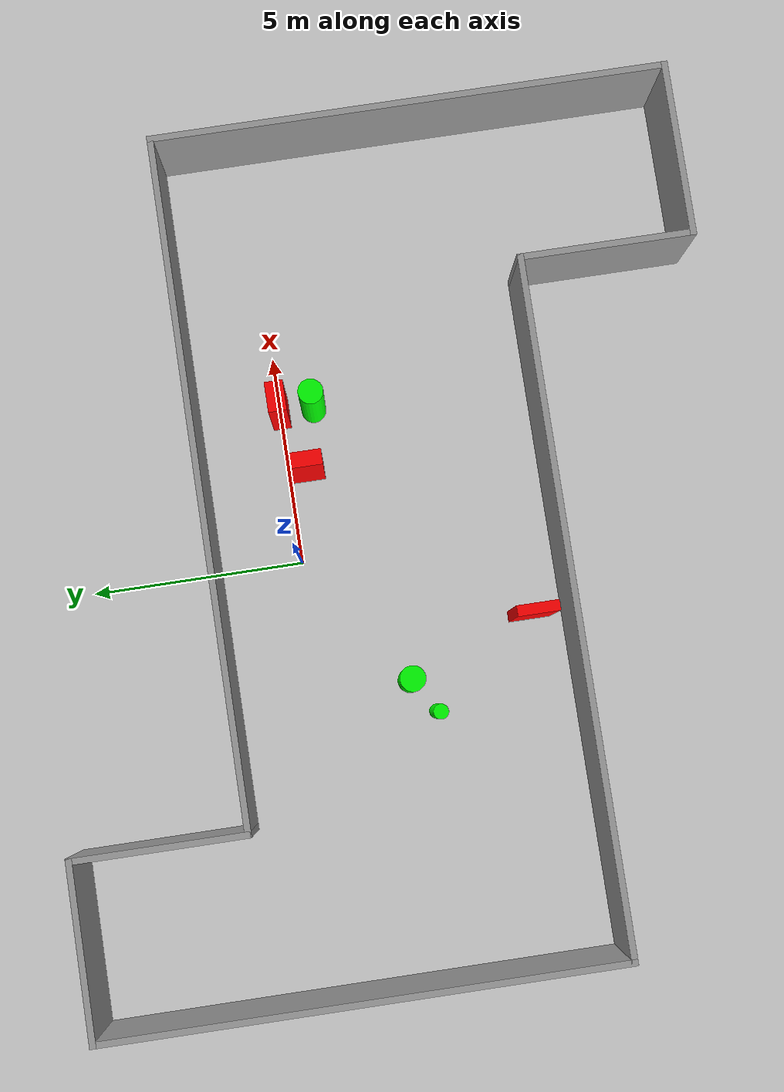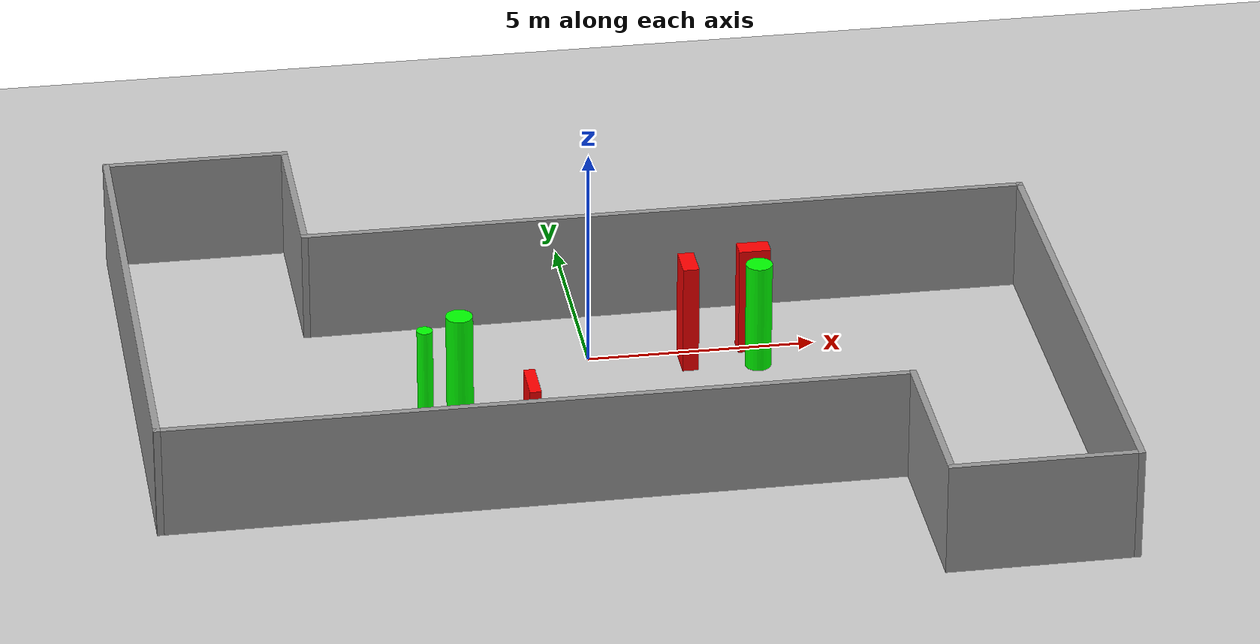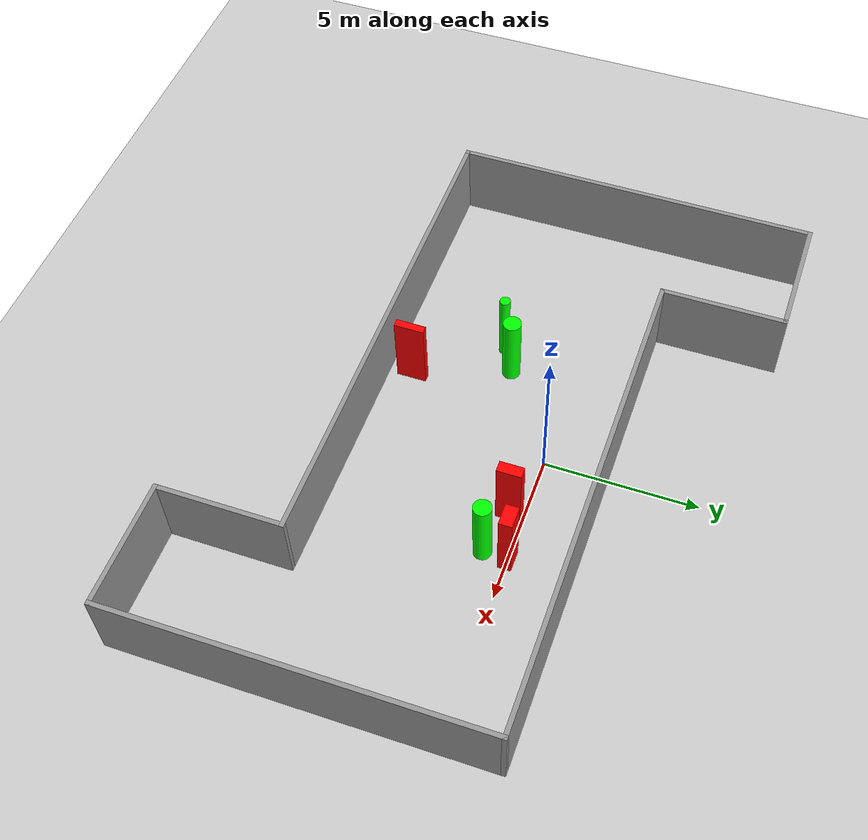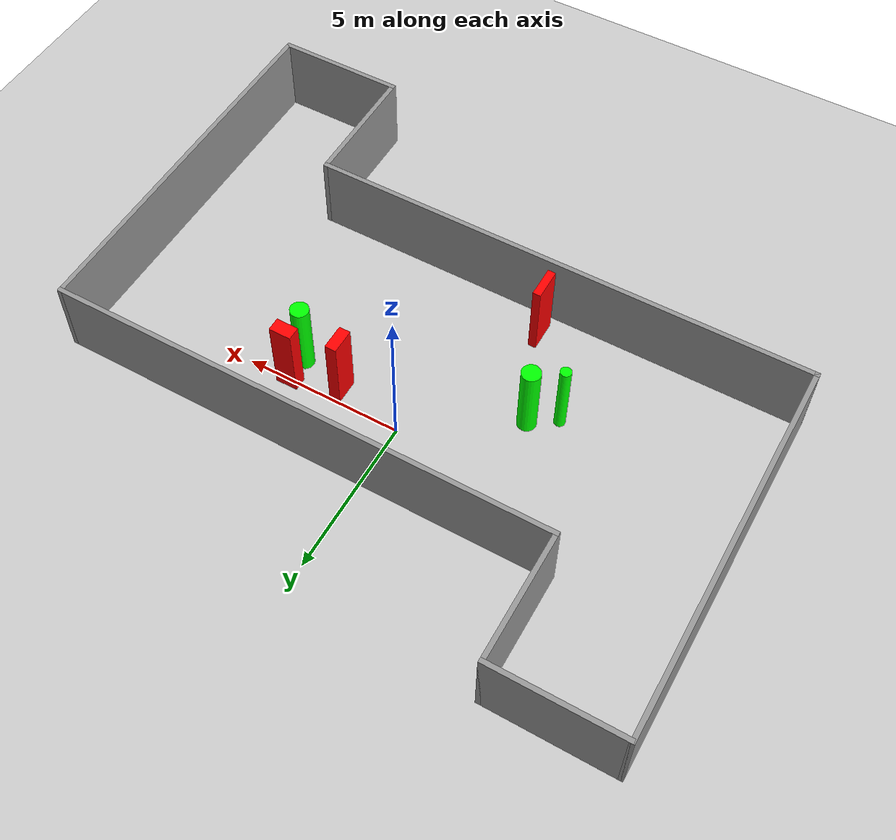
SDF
<sdf version="1.7">
 <world name="default">
  <light name="sun" type="directional">
   <pose>0 0 10 0 -0 0</pose>
   <diffuse>0.8 0.8 0.8 1</diffuse>
   <specular>0.2 0.2 0.2 1</specular>
   <attenuation>
    <range>1000</range>
    <constant>0.9</constant>
    <linear>0.01</linear>
    <quadratic>0.001</quadratic>
   </attenuation>
   <direction>-0.5 0.1 -0.9</direction>
   <spot><inner_angle>0</inner_angle><outer_angle>0</outer_angle><falloff>0</falloff></spot>
  </light>
  <model name="ground_plane">
   <static>1</static>
   <link name="link">
    <collision name="collision">
     <geometry><plane><normal>0 0 1</normal><size>100 100</size></plane></geometry>
     <surface>
      <contact><collide_bitmask>65535</collide_bitmask></contact>
      <friction><ode><mu>100</mu><mu2>50</mu2></ode></friction>
     </surface>
    </collision>
    <visual name="visual">
     <cast_shadows>0</cast_shadows>
     <geometry><plane><normal>0 0 1</normal><size>100 100</size></plane></geometry>
     <material>
      <script><uri>file://media/materials/scripts/gazebo.material</uri><name>Gazebo/Grey</name></script>
     </material>
    </visual>
   </link>
  </model>
  <gravity>0 0 -9.8</gravity>
  <magnetic_field>6e-06 2.3e-05 -4.2e-05</magnetic_field>
  <atmosphere type="adiabatic"/>
  <physics type="ode">
   <max_step_size>0.001</max_step_size>
   <real_time_factor>1</real_time_factor>
   <real_time_update_rate>1000</real_time_update_rate>
  </physics>
  <scene><ambient>0.4 0.4 0.4 1</ambient><background>0.7 0.7 0.7 1</background><shadows>1</shadows></scene>
  <spherical_coordinates>
   <surface_model>EARTH_WGS84</surface_model>
   <latitude_deg>0</latitude_deg>
   <longitude_deg>0</longitude_deg>
   <elevation>0</elevation>
   <heading_deg>0</heading_deg>
  </spherical_coordinates>
  <model name="my_base_walls">
   <link name="Wall_13">
    <collision name="Wall_13_Collision">
     <geometry><box><size>12.15 0.15 2.5</size></box></geometry>
     <pose>0 0 1.25 0 -0 0</pose>
    </collision>
    <visual name="Wall_13_Visual">
     <pose>0 0 1.25 0 -0 0</pose>
     <geometry><box><size>12.15 0.15 2.5</size></box></geometry>
     <material>
      <script><uri>file://media/materials/scripts/gazebo.material</uri><name>Gazebo/Grey</name></script>
      <ambient>1 1 1 1</ambient>
     </material>
     <meta><layer>0</layer></meta>
    </visual>
    <pose>10 -2 0 0 -0 1.5708</pose>
   </link>
   <link name="Wall_15">
    <collision name="Wall_15_Collision">
     <geometry><box><size>16.15 0.15 2.5</size></box></geometry>
     <pose>0 0 1.25 0 -0 0</pose>
    </collision>
    <visual name="Wall_15_Visual">
     <pose>0 0 1.25 0 -0 0</pose>
     <geometry><box><size>16.15 0.15 2.5</size></box></geometry>
     <material>
      <script><uri>file://media/materials/scripts/gazebo.material</uri><name>Gazebo/Grey</name></script>
      <ambient>1 1 1 1</ambient>
     </material>
     <meta><layer>0</layer></meta>
    </visual>
    <pose>2 4 0 0 -0 3.14159</pose>
   </link>
   <link name="Wall_17">
    <collision name="Wall_17_Collision">
     <geometry><box><size>4.15 0.15 2.5</size></box></geometry>
     <pose>0 0 1.25 0 -0 0</pose>
    </collision>
    <visual name="Wall_17_Visual">
     <pose>0 0 1.25 0 -0 0</pose>
     <geometry><box><size>4.15 0.15 2.5</size></box></geometry>
     <material>
      <script><uri>file://media/materials/scripts/gazebo.material</uri><name>Gazebo/Grey</name></script>
      <ambient>1 1 1 1</ambient>
     </material>
     <meta><layer>0</layer></meta>
    </visual>
    <pose>6 -6 0 0 -0 -1.5708</pose>
   </link>
   <link name="Wall_19">
    <collision name="Wall_19_Collision">
     <geometry><box><size>12.15 0.15 2.5</size></box></geometry>
     <pose>0 0 1.25 0 -0 0</pose>
    </collision>
    <visual name="Wall_19_Visual">
     <pose>0 0 1.25 0 -0 0</pose>
     <geometry><box><size>12.15 0.15 2.5</size></box></geometry>
     <material>
      <script><uri>file://media/materials/scripts/gazebo.material</uri><name>Gazebo/Grey</name></script>
      <ambient>1 1 1 1</ambient>
     </material>
     <meta><layer>0</layer></meta>
    </visual>
    <pose>-10 2 0 0 -0 1.5708</pose>
   </link>
   <link name="Wall_21">
    <collision name="Wall_21_Collision">
     <geometry><box><size>4.15 0.15 2.5</size></box></geometry>
     <pose>0 0 1.25 0 -0 0</pose>
    </collision>
    <visual name="Wall_21_Visual">
     <pose>0 0 1.25 0 -0 0</pose>
     <geometry><box><size>4.15 0.15 2.5</size></box></geometry>
     <material>
      <script><uri>file://media/materials/scripts/gazebo.material</uri><name>Gazebo/Grey</name></script>
      <ambient>1 1 1 1</ambient>
     </material>
     <meta><layer>0</layer></meta>
    </visual>
    <pose>-8 8 0 0 -0 0</pose>
   </link>
   <link name="Wall_23">
    <collision name="Wall_23_Collision">
     <geometry><box><size>4.15 0.15 2.5</size></box></geometry>
     <pose>0 0 1.25 0 -0 0</pose>
    </collision>
    <visual name="Wall_23_Visual">
     <pose>0 0 1.25 0 -0 0</pose>
     <geometry><box><size>4.15 0.15 2.5</size></box></geometry>
     <material>
      <script><uri>file://media/materials/scripts/gazebo.material</uri><name>Gazebo/Grey</name></script>
      <ambient>1 1 1 1</ambient>
     </material>
     <meta><layer>0</layer></meta>
    </visual>
    <pose>-6 6 0 0 -0 -1.5708</pose>
   </link>
   <link name="Wall_25">
    <collision name="Wall_25_Collision">
     <geometry><box><size>4.15 0.15 2.5</size></box></geometry>
     <pose>0 0 1.25 0 -0 0</pose>
    </collision>
    <visual name="Wall_25_Visual">
     <pose>0 0 1.25 0 -0 0</pose>
     <geometry><box><size>4.15 0.15 2.5</size></box></geometry>
     <material>
      <script><uri>file://media/materials/scripts/gazebo.material</uri><name>Gazebo/Grey</name></script>
      <ambient>1 1 1 1</ambient>
     </material>
     <meta><layer>0</layer></meta>
    </visual>
    <pose>8 -8 0 0 -0 0</pose>
   </link>
   <link name="Wall_9">
    <collision name="Wall_9_Collision">
     <geometry><box><size>16.15 0.15 2.5</size></box></geometry>
     <pose>0 0 1.25 0 -0 0</pose>
    </collision>
    <visual name="Wall_9_Visual">
     <pose>0 0 1.25 0 -0 0</pose>
     <geometry><box><size>16.15 0.15 2.5</size></box></geometry>
     <material>
      <script><uri>file://media/materials/scripts/gazebo.material</uri><name>Gazebo/Grey</name></script>
      <ambient>1 1 1 1</ambient>
     </material>
     <meta><layer>0</layer></meta>
    </visual>
    <pose>-2 -4 0 0 -0 3.14159</pose>
   </link>
   <static>1</static>
   <pose>-0 -2 0 0 -0 0</pose>
  </model>
  <model name="cylinder1">
   <static>1</static>
   <link name="link">
    <inertial>
     <mass>1</mass>
     <inertia><ixx>0.5</ixx><ixy>0</ixy><ixz>0</ixz><iyy>0.5</iyy><iyz>0</iyz><izz>1</izz></inertia>
    </inertial>
    <collision name="collision">
     <geometry><cylinder><radius>0.17397257465513197</radius><length>2.5</length></cylinder></geometry>
    </collision>
    <visual name="visual">
     <geometry><cylinder><radius>0.17397257465513197</radius><length>2.5</length></cylinder></geometry>
     <material>
      <ambient>0 1 0 1</ambient>
      <diffuse>0 1 0 1</diffuse>
      <specular>0.1 0.1 0.1 1</specular>
      <emissive>0 0 0 0</emissive>
     </material>
    </visual>
   </link>
   <pose>-3.948297453629635 -2.6333698873388744 1.25 0 0 0</pose>
  </model>
  <model name="cylinder2">
   <static>1</static>
   <link name="link">
    <inertial>
     <mass>1</mass>
     <inertia><ixx>0.5</ixx><ixy>0</ixy><ixz>0</ixz><iyy>0.5</iyy><iyz>0</iyz><izz>1</izz></inertia>
    </inertial>
    <collision name="collision">
     <geometry><cylinder><radius>0.2958128143705229</radius><length>2.5</length></cylinder></geometry>
    </collision>
    <visual name="visual">
     <geometry><cylinder><radius>0.2958128143705229</radius><length>2.5</length></cylinder></geometry>
     <material>
      <ambient>0 1 0 1</ambient>
      <diffuse>0 1 0 1</diffuse>
      <specular>0.1 0.1 0.1 1</specular>
      <emissive>0 0 0 0</emissive>
     </material>
    </visual>
   </link>
   <pose>-3.1352088856373523 -2.1237401256519126 1.25 0 0 0</pose>
  </model>
  <model name="cylinder3">
   <static>1</static>
   <link name="link">
    <inertial>
     <mass>1</mass>
     <inertia><ixx>0.5</ixx><ixy>0</ixy><ixz>0</ixz><iyy>0.5</iyy><iyz>0</iyz><izz>1</izz></inertia>
    </inertial>
    <collision name="collision">
     <geometry><cylinder><radius>0.2910836804692586</radius><length>2.5</length></cylinder></geometry>
    </collision>
    <visual name="visual">
     <geometry><cylinder><radius>0.2910836804692586</radius><length>2.5</length></cylinder></geometry>
     <material>
      <ambient>0 1 0 1</ambient>
      <diffuse>0 1 0 1</diffuse>
      <specular>0.1 0.1 0.1 1</specular>
      <emissive>0 0 0 0</emissive>
     </material>
    </visual>
   </link>
   <pose>3.628406932496283 -0.802896083019399 1.25 0 0 0</pose>
  </model>
  <model name="box1">
   <static>1</static>
   <link name="link">
    <inertial>
     <mass>1</mass>
     <inertia><ixx>0.083</ixx><ixy>0</ixy><ixz>0</ixz><iyy>0.083</iyy><iyz>0</iyz><izz>0.083</izz></inertia>
    </inertial>
    <collision name="collision">
     <geometry><box><size>0.6990849956140712 0.4248943094243383 2.5</size></box></geometry>
    </collision>
    <visual name="visual">
     <geometry><box><size>0.6990849956140712 0.4248943094243383 2.5</size></box></geometry>
     <material>
      <ambient>1 0 0 1</ambient>
      <diffuse>1 0 0 1</diffuse>
      <specular>0.1 0.1 0.1 1</specular>
      <emissive>0 0 0 0</emissive>
     </material>
    </visual>
    <sensor name="my_contact" type="contact">
     <contact><collision>box_collision</collision><topic>__default_topic__</topic></contact>
    </sensor>
   </link>
   <pose>3.6414086245364867 -0.0012952634306193644 1.25 0 0 0</pose>
  </model>
  <model name="box2">
   <static>1</static>
   <link name="link">
    <inertial>
     <mass>1</mass>
     <inertia><ixx>0.083</ixx><ixy>0</ixy><ixz>0</ixz><iyy>0.083</iyy><iyz>0</iyz><izz>0.083</izz></inertia>
    </inertial>
    <collision name="collision">
     <geometry><box><size>0.2493228864001602 0.9793215616586219 2.5</size></box></geometry>
    </collision>
    <visual name="visual">
     <geometry><box><size>0.2493228864001602 0.9793215616586219 2.5</size></box></geometry>
     <material>
      <ambient>1 0 0 1</ambient>
      <diffuse>1 0 0 1</diffuse>
      <specular>0.1 0.1 0.1 1</specular>
      <emissive>0 0 0 0</emissive>
     </material>
    </visual>
    <sensor name="my_contact" type="contact">
     <contact><collision>box_collision</collision><topic>__default_topic__</topic></contact>
    </sensor>
   </link>
   <pose>-1.991383894664322 -5.144876721027277 1.25 0 0 0</pose>
  </model>
  <model name="box3">
   <static>1</static>
   <link name="link">
    <inertial>
     <mass>1</mass>
     <inertia><ixx>0.083</ixx><ixy>0</ixy><ixz>0</ixz><iyy>0.083</iyy><iyz>0</iyz><izz>0.083</izz></inertia>
    </inertial>
    <collision name="collision">
     <geometry><box><size>0.3576383514196505 0.7871089253301066 2.5</size></box></geometry>
    </collision>
    <visual name="visual">
     <geometry><box><size>0.3576383514196505 0.7871089253301066 2.5</size></box></geometry>
     <material>
      <ambient>1 0 0 1</ambient>
      <diffuse>1 0 0 1</diffuse>
      <specular>0.1 0.1 0.1 1</specular>
      <emissive>0 0 0 0</emissive>
     </material>
    </visual>
    <sensor name="my_contact" type="contact">
     <contact><collision>box_collision</collision><topic>__default_topic__</topic></contact>
    </sensor>
   </link>
   <pose>2.1238931795958997 -0.4502840963133323 1.25 0 0 0</pose>
  </model>
 </world>
</sdf>
